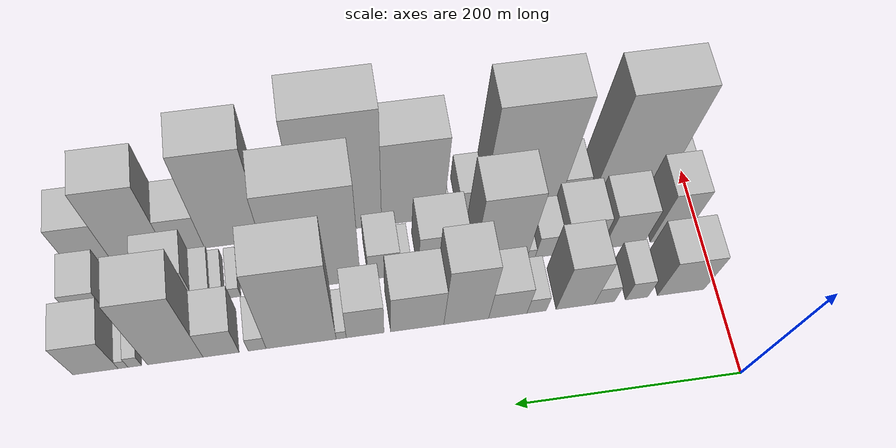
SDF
<sdf version="1.6">
 <world name="default">
  <model name="building_19">
   <static>1</static>
   <pose>100.0000 32.2616 0 0.000000 0.000000 0.000000</pose>
   <link name="link">
    <pose>0 0 37.50 0 0 0</pose>
    <collision name="collision"><geometry><box><size>40.0000 43.1738 75.0000</size></box></geometry></collision>
    <visual name="visual">
     <cast_shadows>0</cast_shadows>
     <geometry><box><size>40.0000 43.1738 75.0000</size></box></geometry>
     <material>
      <script>
       <uri>model://HANNAS_wall/materials/scripts</uri>
       <uri>model://HANNAS_wall/materials/textures</uri>
       <name>vrc/HANNAS_wall</name>
      </script>
     </material>
    </visual>
   </link>
  </model>
  <model name="building_20">
   <static>1</static>
   <pose>100.0000 73.1810 0 0.000000 0.000000 0.000000</pose>
   <link name="link">
    <pose>0 0 19.50 0 0 0</pose>
    <collision name="collision"><geometry><box><size>40.0000 20.6649 39.0000</size></box></geometry></collision>
    <visual name="visual">
     <cast_shadows>0</cast_shadows>
     <geometry><box><size>40.0000 20.6649 39.0000</size></box></geometry>
     <material>
      <script>
       <uri>model://HANNAS_wall/materials/scripts</uri>
       <uri>model://HANNAS_wall/materials/textures</uri>
       <name>vrc/HANNAS_wall</name>
      </script>
     </material>
    </visual>
   </link>
  </model>
  <model name="building_21">
   <static>1</static>
   <pose>100.0000 102.8595 0 0.000000 0.000000 0.000000</pose>
   <link name="link">
    <pose>0 0 18.00 0 0 0</pose>
    <collision name="collision"><geometry><box><size>40.0000 18.6922 36.0000</size></box></geometry></collision>
    <visual name="visual">
     <cast_shadows>0</cast_shadows>
     <geometry><box><size>40.0000 18.6922 36.0000</size></box></geometry>
     <material>
      <script>
       <uri>model://HANNAS_wall/materials/scripts</uri>
       <uri>model://HANNAS_wall/materials/textures</uri>
       <name>vrc/HANNAS_wall</name>
      </script>
     </material>
    </visual>
   </link>
  </model>
  <model name="building_22">
   <static>1</static>
   <pose>100.0000 129.7020 0 0.000000 0.000000 0.000000</pose>
   <link name="link">
    <pose>0 0 48.00 0 0 0</pose>
    <collision name="collision"><geometry><box><size>40.0000 34.9927 96.0000</size></box></geometry></collision>
    <visual name="visual">
     <cast_shadows>0</cast_shadows>
     <geometry><box><size>40.0000 34.9927 96.0000</size></box></geometry>
     <material>
      <script>
       <uri>model://HANNAS_wall/materials/scripts</uri>
       <uri>model://HANNAS_wall/materials/textures</uri>
       <name>vrc/HANNAS_wall</name>
      </script>
     </material>
    </visual>
   </link>
  </model>
  <model name="building_23">
   <static>1</static>
   <pose>100.0000 164.9879 0 0.000000 0.000000 0.000000</pose>
   <link name="link">
    <pose>0 0 16.50 0 0 0</pose>
    <collision name="collision"><geometry><box><size>40.0000 17.5790 33.0000</size></box></geometry></collision>
    <visual name="visual">
     <cast_shadows>0</cast_shadows>
     <geometry><box><size>40.0000 17.5790 33.0000</size></box></geometry>
     <material>
      <script>
       <uri>model://HANNAS_wall/materials/scripts</uri>
       <uri>model://HANNAS_wall/materials/textures</uri>
       <name>vrc/HANNAS_wall</name>
      </script>
     </material>
    </visual>
   </link>
  </model>
  <model name="building_24">
   <static>1</static>
   <pose>100.0000 191.1892 0 0.000000 0.000000 0.000000</pose>
   <link name="link">
    <pose>0 0 30.00 0 0 0</pose>
    <collision name="collision"><geometry><box><size>40.0000 34.8237 60.0000</size></box></geometry></collision>
    <visual name="visual">
     <cast_shadows>0</cast_shadows>
     <geometry><box><size>40.0000 34.8237 60.0000</size></box></geometry>
     <material>
      <script>
       <uri>model://HANNAS_wall/materials/scripts</uri>
       <uri>model://HANNAS_wall/materials/textures</uri>
       <name>vrc/HANNAS_wall</name>
      </script>
     </material>
    </visual>
   </link>
  </model>
  <model name="building_25">
   <static>1</static>
   <pose>100.0000 228.8745 0 0.000000 0.000000 0.000000</pose>
   <link name="link">
    <pose>0 0 61.50 0 0 0</pose>
    <collision name="collision"><geometry><box><size>40.0000 40.5469 123.0000</size></box></geometry></collision>
    <visual name="visual">
     <cast_shadows>0</cast_shadows>
     <geometry><box><size>40.0000 40.5469 123.0000</size></box></geometry>
     <material>
      <script>
       <uri>model://HANNAS_wall/materials/scripts</uri>
       <uri>model://HANNAS_wall/materials/textures</uri>
       <name>vrc/HANNAS_wall</name>
      </script>
     </material>
    </visual>
   </link>
  </model>
  <model name="building_26">
   <static>1</static>
   <pose>100.0000 273.0367 0 0.000000 0.000000 0.000000</pose>
   <link name="link">
    <pose>0 0 40.50 0 0 0</pose>
    <collision name="collision"><geometry><box><size>40.0000 47.7774 81.0000</size></box></geometry></collision>
    <visual name="visual">
     <cast_shadows>0</cast_shadows>
     <geometry><box><size>40.0000 47.7774 81.0000</size></box></geometry>
     <material>
      <script>
       <uri>model://HANNAS_wall/materials/scripts</uri>
       <uri>model://HANNAS_wall/materials/textures</uri>
       <name>vrc/HANNAS_wall</name>
      </script>
     </material>
    </visual>
   </link>
  </model>
  <model name="building_27">
   <static>1</static>
   <pose>100.0000 319.7425 0 0.000000 0.000000 0.000000</pose>
   <link name="link">
    <pose>0 0 33.00 0 0 0</pose>
    <collision name="collision"><geometry><box><size>40.0000 33.6341 66.0000</size></box></geometry></collision>
    <visual name="visual">
     <cast_shadows>0</cast_shadows>
     <geometry><box><size>40.0000 33.6341 66.0000</size></box></geometry>
     <material>
      <script>
       <uri>model://HANNAS_wall/materials/scripts</uri>
       <uri>model://HANNAS_wall/materials/textures</uri>
       <name>vrc/HANNAS_wall</name>
      </script>
     </material>
    </visual>
   </link>
  </model>
  <model name="building_28">
   <static>1</static>
   <pose>100.0000 341.0552 0 0.000000 0.000000 0.000000</pose>
   <link name="link">
    <pose>0 0 9.00 0 0 0</pose>
    <collision name="collision"><geometry><box><size>40.0000 8.9914 18.0000</size></box></geometry></collision>
    <visual name="visual">
     <cast_shadows>0</cast_shadows>
     <geometry><box><size>40.0000 8.9914 18.0000</size></box></geometry>
     <material>
      <script>
       <uri>model://HANNAS_wall/materials/scripts</uri>
       <uri>model://HANNAS_wall/materials/textures</uri>
       <name>vrc/HANNAS_wall</name>
      </script>
     </material>
    </visual>
   </link>
  </model>
  <model name="building_29">
   <static>1</static>
   <pose>100.0000 376.5766 0 0.000000 0.000000 0.000000</pose>
   <link name="link">
    <pose>0 0 87.00 0 0 0</pose>
    <collision name="collision"><geometry><box><size>40.0000 62.0514 174.0000</size></box></geometry></collision>
    <visual name="visual">
     <cast_shadows>0</cast_shadows>
     <geometry><box><size>40.0000 62.0514 174.0000</size></box></geometry>
     <material>
      <script>
       <uri>model://HANNAS_wall/materials/scripts</uri>
       <uri>model://HANNAS_wall/materials/textures</uri>
       <name>vrc/HANNAS_wall</name>
      </script>
     </material>
    </visual>
   </link>
  </model>
  <model name="building_30">
   <static>1</static>
   <pose>100.0000 415.5461 0 0.000000 0.000000 0.000000</pose>
   <link name="link">
    <pose>0 0 15.00 0 0 0</pose>
    <collision name="collision"><geometry><box><size>40.0000 15.8877 30.0000</size></box></geometry></collision>
    <visual name="visual">
     <cast_shadows>0</cast_shadows>
     <geometry><box><size>40.0000 15.8877 30.0000</size></box></geometry>
     <material>
      <script>
       <uri>model://HANNAS_wall/materials/scripts</uri>
       <uri>model://HANNAS_wall/materials/textures</uri>
       <name>vrc/HANNAS_wall</name>
      </script>
     </material>
    </visual>
   </link>
  </model>
  <model name="building_31">
   <static>1</static>
   <pose>100.0000 447.3565 0 0.000000 0.000000 0.000000</pose>
   <link name="link">
    <pose>0 0 30.00 0 0 0</pose>
    <collision name="collision"><geometry><box><size>40.0000 31.7331 60.0000</size></box></geometry></collision>
    <visual name="visual">
     <cast_shadows>0</cast_shadows>
     <geometry><box><size>40.0000 31.7331 60.0000</size></box></geometry>
     <material>
      <script>
       <uri>model://HANNAS_wall/materials/scripts</uri>
       <uri>model://HANNAS_wall/materials/textures</uri>
       <name>vrc/HANNAS_wall</name>
      </script>
     </material>
    </visual>
   </link>
  </model>
  <model name="building_32">
   <static>1</static>
   <pose>100.0000 487.4718 0 0.000000 0.000000 0.000000</pose>
   <link name="link">
    <pose>0 0 75.00 0 0 0</pose>
    <collision name="collision"><geometry><box><size>40.0000 48.4975 150.0000</size></box></geometry></collision>
    <visual name="visual">
     <cast_shadows>0</cast_shadows>
     <geometry><box><size>40.0000 48.4975 150.0000</size></box></geometry>
     <material>
      <script>
       <uri>model://HANNAS_wall/materials/scripts</uri>
       <uri>model://HANNAS_wall/materials/textures</uri>
       <name>vrc/HANNAS_wall</name>
      </script>
     </material>
    </visual>
   </link>
  </model>
  <model name="building_33">
   <static>1</static>
   <pose>100.0000 522.6468 0 0.000000 0.000000 0.000000</pose>
   <link name="link">
    <pose>0 0 12.00 0 0 0</pose>
    <collision name="collision"><geometry><box><size>40.0000 11.8524 24.0000</size></box></geometry></collision>
    <visual name="visual">
     <cast_shadows>0</cast_shadows>
     <geometry><box><size>40.0000 11.8524 24.0000</size></box></geometry>
     <material>
      <script>
       <uri>model://HANNAS_wall/materials/scripts</uri>
       <uri>model://HANNAS_wall/materials/textures</uri>
       <name>vrc/HANNAS_wall</name>
      </script>
     </material>
    </visual>
   </link>
  </model>
  <model name="building_34">
   <static>1</static>
   <pose>100.0000 532.8101 0 0.000000 0.000000 0.000000</pose>
   <link name="link">
    <pose>0 0 9.00 0 0 0</pose>
    <collision name="collision"><geometry><box><size>40.0000 8.4741 18.0000</size></box></geometry></collision>
    <visual name="visual">
     <cast_shadows>0</cast_shadows>
     <geometry><box><size>40.0000 8.4741 18.0000</size></box></geometry>
     <material>
      <script>
       <uri>model://HANNAS_wall/materials/scripts</uri>
       <uri>model://HANNAS_wall/materials/textures</uri>
       <name>vrc/HANNAS_wall</name>
      </script>
     </material>
    </visual>
   </link>
  </model>
  <model name="building_35">
   <static>1</static>
   <pose>100.0000 556.6974 0 0.000000 0.000000 0.000000</pose>
   <link name="link">
    <pose>0 0 36.00 0 0 0</pose>
    <collision name="collision"><geometry><box><size>40.0000 39.3006 72.0000</size></box></geometry></collision>
    <visual name="visual">
     <cast_shadows>0</cast_shadows>
     <geometry><box><size>40.0000 39.3006 72.0000</size></box></geometry>
     <material>
      <script>
       <uri>model://HANNAS_wall/materials/scripts</uri>
       <uri>model://HANNAS_wall/materials/textures</uri>
       <name>vrc/HANNAS_wall</name>
      </script>
     </material>
    </visual>
   </link>
  </model>
  <model name="building_52">
   <static>1</static>
   <pose>152.0000 31.6889 0 0.000000 0.000000 0.000000</pose>
   <link name="link">
    <pose>0 0 48.00 0 0 0</pose>
    <collision name="collision"><geometry><box><size>40.0000 31.4053 96.0000</size></box></geometry></collision>
    <visual name="visual">
     <cast_shadows>0</cast_shadows>
     <geometry><box><size>40.0000 31.4053 96.0000</size></box></geometry>
     <material>
      <script>
       <uri>model://HANNAS_wall/materials/scripts</uri>
       <uri>model://HANNAS_wall/materials/textures</uri>
       <name>vrc/HANNAS_wall</name>
      </script>
     </material>
    </visual>
   </link>
  </model>
  <model name="building_53">
   <static>1</static>
   <pose>152.0000 72.4123 0 0.000000 0.000000 0.000000</pose>
   <link name="link">
    <pose>0 0 34.50 0 0 0</pose>
    <collision name="collision"><geometry><box><size>40.0000 38.0416 69.0000</size></box></geometry></collision>
    <visual name="visual">
     <cast_shadows>0</cast_shadows>
     <geometry><box><size>40.0000 38.0416 69.0000</size></box></geometry>
     <material>
      <script>
       <uri>model://HANNAS_wall/materials/scripts</uri>
       <uri>model://HANNAS_wall/materials/textures</uri>
       <name>vrc/HANNAS_wall</name>
      </script>
     </material>
    </visual>
   </link>
  </model>
  <model name="building_54">
   <static>1</static>
   <pose>152.0000 114.3250 0 0.000000 0.000000 0.000000</pose>
   <link name="link">
    <pose>0 0 33.00 0 0 0</pose>
    <collision name="collision"><geometry><box><size>40.0000 37.7837 66.0000</size></box></geometry></collision>
    <visual name="visual">
     <cast_shadows>0</cast_shadows>
     <geometry><box><size>40.0000 37.7837 66.0000</size></box></geometry>
     <material>
      <script>
       <uri>model://HANNAS_wall/materials/scripts</uri>
       <uri>model://HANNAS_wall/materials/textures</uri>
       <name>vrc/HANNAS_wall</name>
      </script>
     </material>
    </visual>
   </link>
  </model>
  <model name="building_55">
   <static>1</static>
   <pose>152.0000 144.5423 0 0.000000 0.000000 0.000000</pose>
   <link name="link">
    <pose>0 0 21.00 0 0 0</pose>
    <collision name="collision"><geometry><box><size>40.0000 22.6509 42.0000</size></box></geometry></collision>
    <visual name="visual">
     <cast_shadows>0</cast_shadows>
     <geometry><box><size>40.0000 22.6509 42.0000</size></box></geometry>
     <material>
      <script>
       <uri>model://HANNAS_wall/materials/scripts</uri>
       <uri>model://HANNAS_wall/materials/textures</uri>
       <name>vrc/HANNAS_wall</name>
      </script>
     </material>
    </visual>
   </link>
  </model>
  <model name="building_56">
   <static>1</static>
   <pose>152.0000 159.6334 0 0.000000 0.000000 0.000000</pose>
   <link name="link">
    <pose>0 0 9.00 0 0 0</pose>
    <collision name="collision"><geometry><box><size>40.0000 7.5313 18.0000</size></box></geometry></collision>
    <visual name="visual">
     <cast_shadows>0</cast_shadows>
     <geometry><box><size>40.0000 7.5313 18.0000</size></box></geometry>
     <material>
      <script>
       <uri>model://HANNAS_wall/materials/scripts</uri>
       <uri>model://HANNAS_wall/materials/textures</uri>
       <name>vrc/HANNAS_wall</name>
      </script>
     </material>
    </visual>
   </link>
  </model>
  <model name="building_57">
   <static>1</static>
   <pose>152.0000 188.3692 0 0.000000 0.000000 0.000000</pose>
   <link name="link">
    <pose>0 0 67.50 0 0 0</pose>
    <collision name="collision"><geometry><box><size>40.0000 49.9403 135.0000</size></box></geometry></collision>
    <visual name="visual">
     <cast_shadows>0</cast_shadows>
     <geometry><box><size>40.0000 49.9403 135.0000</size></box></geometry>
     <material>
      <script>
       <uri>model://HANNAS_wall/materials/scripts</uri>
       <uri>model://HANNAS_wall/materials/textures</uri>
       <name>vrc/HANNAS_wall</name>
      </script>
     </material>
    </visual>
   </link>
  </model>
  <model name="building_58">
   <static>1</static>
   <pose>152.0000 242.3548 0 0.000000 0.000000 0.000000</pose>
   <link name="link">
    <pose>0 0 37.50 0 0 0</pose>
    <collision name="collision"><geometry><box><size>40.0000 44.0309 75.0000</size></box></geometry></collision>
    <visual name="visual">
     <cast_shadows>0</cast_shadows>
     <geometry><box><size>40.0000 44.0309 75.0000</size></box></geometry>
     <material>
      <script>
       <uri>model://HANNAS_wall/materials/scripts</uri>
       <uri>model://HANNAS_wall/materials/textures</uri>
       <name>vrc/HANNAS_wall</name>
      </script>
     </material>
    </visual>
   </link>
  </model>
  <model name="building_59">
   <static>1</static>
   <pose>152.0000 275.8309 0 0.000000 0.000000 0.000000</pose>
   <link name="link">
    <pose>0 0 12.00 0 0 0</pose>
    <collision name="collision"><geometry><box><size>40.0000 10.9214 24.0000</size></box></geometry></collision>
    <visual name="visual">
     <cast_shadows>0</cast_shadows>
     <geometry><box><size>40.0000 10.9214 24.0000</size></box></geometry>
     <material>
      <script>
       <uri>model://HANNAS_wall/materials/scripts</uri>
       <uri>model://HANNAS_wall/materials/textures</uri>
       <name>vrc/HANNAS_wall</name>
      </script>
     </material>
    </visual>
   </link>
  </model>
  <model name="building_60">
   <static>1</static>
   <pose>152.0000 295.7614 0 0.000000 0.000000 0.000000</pose>
   <link name="link">
    <pose>0 0 27.00 0 0 0</pose>
    <collision name="collision"><geometry><box><size>40.0000 28.9395 54.0000</size></box></geometry></collision>
    <visual name="visual">
     <cast_shadows>0</cast_shadows>
     <geometry><box><size>40.0000 28.9395 54.0000</size></box></geometry>
     <material>
      <script>
       <uri>model://HANNAS_wall/materials/scripts</uri>
       <uri>model://HANNAS_wall/materials/textures</uri>
       <name>vrc/HANNAS_wall</name>
      </script>
     </material>
    </visual>
   </link>
  </model>
  <model name="building_61">
   <static>1</static>
   <pose>152.0000 355.4375 0 0.000000 0.000000 0.000000</pose>
   <link name="link">
    <pose>0 0 96.00 0 0 0</pose>
    <collision name="collision"><geometry><box><size>40.0000 76.4127 192.0000</size></box></geometry></collision>
    <visual name="visual">
     <cast_shadows>0</cast_shadows>
     <geometry><box><size>40.0000 76.4127 192.0000</size></box></geometry>
     <material>
      <script>
       <uri>model://HANNAS_wall/materials/scripts</uri>
       <uri>model://HANNAS_wall/materials/textures</uri>
       <name>vrc/HANNAS_wall</name>
      </script>
     </material>
    </visual>
   </link>
  </model>
  <model name="building_62">
   <static>1</static>
   <pose>152.0000 406.7517 0 0.000000 0.000000 0.000000</pose>
   <link name="link">
    <pose>0 0 22.50 0 0 0</pose>
    <collision name="collision"><geometry><box><size>40.0000 26.2156 45.0000</size></box></geometry></collision>
    <visual name="visual">
     <cast_shadows>0</cast_shadows>
     <geometry><box><size>40.0000 26.2156 45.0000</size></box></geometry>
     <material>
      <script>
       <uri>model://HANNAS_wall/materials/scripts</uri>
       <uri>model://HANNAS_wall/materials/textures</uri>
       <name>vrc/HANNAS_wall</name>
      </script>
     </material>
    </visual>
   </link>
  </model>
  <model name="building_63">
   <static>1</static>
   <pose>152.0000 431.0252 0 0.000000 0.000000 0.000000</pose>
   <link name="link">
    <pose>0 0 10.50 0 0 0</pose>
    <collision name="collision"><geometry><box><size>40.0000 10.3315 21.0000</size></box></geometry></collision>
    <visual name="visual">
     <cast_shadows>0</cast_shadows>
     <geometry><box><size>40.0000 10.3315 21.0000</size></box></geometry>
     <material>
      <script>
       <uri>model://HANNAS_wall/materials/scripts</uri>
       <uri>model://HANNAS_wall/materials/textures</uri>
       <name>vrc/HANNAS_wall</name>
      </script>
     </material>
    </visual>
   </link>
  </model>
  <model name="building_64">
   <static>1</static>
   <pose>152.0000 445.3831 0 0.000000 0.000000 0.000000</pose>
   <link name="link">
    <pose>0 0 10.50 0 0 0</pose>
    <collision name="collision"><geometry><box><size>40.0000 10.3843 21.0000</size></box></geometry></collision>
    <visual name="visual">
     <cast_shadows>0</cast_shadows>
     <geometry><box><size>40.0000 10.3843 21.0000</size></box></geometry>
     <material>
      <script>
       <uri>model://HANNAS_wall/materials/scripts</uri>
       <uri>model://HANNAS_wall/materials/textures</uri>
       <name>vrc/HANNAS_wall</name>
      </script>
     </material>
    </visual>
   </link>
  </model>
  <model name="building_65">
   <static>1</static>
   <pose>152.0000 458.6024 0 0.000000 0.000000 0.000000</pose>
   <link name="link">
    <pose>0 0 15.00 0 0 0</pose>
    <collision name="collision"><geometry><box><size>40.0000 16.0543 30.0000</size></box></geometry></collision>
    <visual name="visual">
     <cast_shadows>0</cast_shadows>
     <geometry><box><size>40.0000 16.0543 30.0000</size></box></geometry>
     <material>
      <script>
       <uri>model://HANNAS_wall/materials/scripts</uri>
       <uri>model://HANNAS_wall/materials/textures</uri>
       <name>vrc/HANNAS_wall</name>
      </script>
     </material>
    </visual>
   </link>
  </model>
  <model name="building_66">
   <static>1</static>
   <pose>152.0000 487.6283 0 0.000000 0.000000 0.000000</pose>
   <link name="link">
    <pose>0 0 36.00 0 0 0</pose>
    <collision name="collision"><geometry><box><size>40.0000 41.9977 72.0000</size></box></geometry></collision>
    <visual name="visual">
     <cast_shadows>0</cast_shadows>
     <geometry><box><size>40.0000 41.9977 72.0000</size></box></geometry>
     <material>
      <script>
       <uri>model://HANNAS_wall/materials/scripts</uri>
       <uri>model://HANNAS_wall/materials/textures</uri>
       <name>vrc/HANNAS_wall</name>
      </script>
     </material>
    </visual>
   </link>
  </model>
  <model name="building_67">
   <static>1</static>
   <pose>152.0000 517.8800 0 0.000000 0.000000 0.000000</pose>
   <link name="link">
    <pose>0 0 16.50 0 0 0</pose>
    <collision name="collision"><geometry><box><size>40.0000 18.5056 33.0000</size></box></geometry></collision>
    <visual name="visual">
     <cast_shadows>0</cast_shadows>
     <geometry><box><size>40.0000 18.5056 33.0000</size></box></geometry>
     <material>
      <script>
       <uri>model://HANNAS_wall/materials/scripts</uri>
       <uri>model://HANNAS_wall/materials/textures</uri>
       <name>vrc/HANNAS_wall</name>
      </script>
     </material>
    </visual>
   </link>
  </model>
  <model name="building_68">
   <static>1</static>
   <pose>152.0000 540.4838 0 0.000000 0.000000 0.000000</pose>
   <link name="link">
    <pose>0 0 9.00 0 0 0</pose>
    <collision name="collision"><geometry><box><size>40.0000 8.7020 18.0000</size></box></geometry></collision>
    <visual name="visual">
     <cast_shadows>0</cast_shadows>
     <geometry><box><size>40.0000 8.7020 18.0000</size></box></geometry>
     <material>
      <script>
       <uri>model://HANNAS_wall/materials/scripts</uri>
       <uri>model://HANNAS_wall/materials/textures</uri>
       <name>vrc/HANNAS_wall</name>
      </script>
     </material>
    </visual>
   </link>
  </model>
  <model name="building_69">
   <static>1</static>
   <pose>152.0000 560.0318 0 0.000000 0.000000 0.000000</pose>
   <link name="link">
    <pose>0 0 27.00 0 0 0</pose>
    <collision name="collision"><geometry><box><size>40.0000 30.3942 54.0000</size></box></geometry></collision>
    <visual name="visual">
     <cast_shadows>0</cast_shadows>
     <geometry><box><size>40.0000 30.3942 54.0000</size></box></geometry>
     <material>
      <script>
       <uri>model://HANNAS_wall/materials/scripts</uri>
       <uri>model://HANNAS_wall/materials/textures</uri>
       <name>vrc/HANNAS_wall</name>
      </script>
     </material>
    </visual>
   </link>
  </model>
  <model name="building_83">
   <static>1</static>
   <pose>204.0000 10.4153 0 0.000000 0.000000 0.000000</pose>
   <link name="link">
    <pose>0 0 22.50 0 0 0</pose>
    <collision name="collision"><geometry><box><size>40.0000 23.0629 45.0000</size></box></geometry></collision>
    <visual name="visual">
     <cast_shadows>0</cast_shadows>
     <geometry><box><size>40.0000 23.0629 45.0000</size></box></geometry>
     <material>
      <script>
       <uri>model://HANNAS_wall/materials/scripts</uri>
       <uri>model://HANNAS_wall/materials/textures</uri>
       <name>vrc/HANNAS_wall</name>
      </script>
     </material>
    </visual>
   </link>
  </model>
  <model name="building_84">
   <static>1</static>
   <pose>204.0000 56.2340 0 0.000000 0.000000 0.000000</pose>
   <link name="link">
    <pose>0 0 90.00 0 0 0</pose>
    <collision name="collision"><geometry><box><size>40.0000 68.5745 180.0000</size></box></geometry></collision>
    <visual name="visual">
     <cast_shadows>0</cast_shadows>
     <geometry><box><size>40.0000 68.5745 180.0000</size></box></geometry>
     <material>
      <script>
       <uri>model://HANNAS_wall/materials/scripts</uri>
       <uri>model://HANNAS_wall/materials/textures</uri>
       <name>vrc/HANNAS_wall</name>
      </script>
     </material>
    </visual>
   </link>
  </model>
  <model name="building_85">
   <static>1</static>
   <pose>204.0000 109.8151 0 0.000000 0.000000 0.000000</pose>
   <link name="link">
    <pose>0 0 22.50 0 0 0</pose>
    <collision name="collision"><geometry><box><size>40.0000 24.5877 45.0000</size></box></geometry></collision>
    <visual name="visual">
     <cast_shadows>0</cast_shadows>
     <geometry><box><size>40.0000 24.5877 45.0000</size></box></geometry>
     <material>
      <script>
       <uri>model://HANNAS_wall/materials/scripts</uri>
       <uri>model://HANNAS_wall/materials/textures</uri>
       <name>vrc/HANNAS_wall</name>
      </script>
     </material>
    </visual>
   </link>
  </model>
  <model name="building_86">
   <static>1</static>
   <pose>204.0000 159.2760 0 0.000000 0.000000 0.000000</pose>
   <link name="link">
    <pose>0 0 93.00 0 0 0</pose>
    <collision name="collision"><geometry><box><size>40.0000 74.3343 186.0000</size></box></geometry></collision>
    <visual name="visual">
     <cast_shadows>0</cast_shadows>
     <geometry><box><size>40.0000 74.3343 186.0000</size></box></geometry>
     <material>
      <script>
       <uri>model://HANNAS_wall/materials/scripts</uri>
       <uri>model://HANNAS_wall/materials/textures</uri>
       <name>vrc/HANNAS_wall</name>
      </script>
     </material>
    </visual>
   </link>
  </model>
  <model name="building_87">
   <static>1</static>
   <pose>204.0000 207.7874 0 0.000000 0.000000 0.000000</pose>
   <link name="link">
    <pose>0 0 22.50 0 0 0</pose>
    <collision name="collision"><geometry><box><size>40.0000 22.6885 45.0000</size></box></geometry></collision>
    <visual name="visual">
     <cast_shadows>0</cast_shadows>
     <geometry><box><size>40.0000 22.6885 45.0000</size></box></geometry>
     <material>
      <script>
       <uri>model://HANNAS_wall/materials/scripts</uri>
       <uri>model://HANNAS_wall/materials/textures</uri>
       <name>vrc/HANNAS_wall</name>
      </script>
     </material>
    </visual>
   </link>
  </model>
  <model name="building_88">
   <static>1</static>
   <pose>204.0000 229.4666 0 0.000000 0.000000 0.000000</pose>
   <link name="link">
    <pose>0 0 7.50 0 0 0</pose>
    <collision name="collision"><geometry><box><size>40.0000 6.6697 15.0000</size></box></geometry></collision>
    <visual name="visual">
     <cast_shadows>0</cast_shadows>
     <geometry><box><size>40.0000 6.6697 15.0000</size></box></geometry>
     <material>
      <script>
       <uri>model://HANNAS_wall/materials/scripts</uri>
       <uri>model://HANNAS_wall/materials/textures</uri>
       <name>vrc/HANNAS_wall</name>
      </script>
     </material>
    </visual>
   </link>
  </model>
  <model name="building_89">
   <static>1</static>
   <pose>204.0000 261.8028 0 0.000000 0.000000 0.000000</pose>
   <link name="link">
    <pose>0 0 75.00 0 0 0</pose>
    <collision name="collision"><geometry><box><size>40.0000 58.0028 150.0000</size></box></geometry></collision>
    <visual name="visual">
     <cast_shadows>0</cast_shadows>
     <geometry><box><size>40.0000 58.0028 150.0000</size></box></geometry>
     <material>
      <script>
       <uri>model://HANNAS_wall/materials/scripts</uri>
       <uri>model://HANNAS_wall/materials/textures</uri>
       <name>vrc/HANNAS_wall</name>
      </script>
     </material>
    </visual>
   </link>
  </model>
  <model name="building_90">
   <static>1</static>
   <pose>204.0000 328.3481 0 0.000000 0.000000 0.000000</pose>
   <link name="link">
    <pose>0 0 103.50 0 0 0</pose>
    <collision name="collision"><geometry><box><size>40.0000 75.0877 207.0000</size></box></geometry></collision>
    <visual name="visual">
     <cast_shadows>0</cast_shadows>
     <geometry><box><size>40.0000 75.0877 207.0000</size></box></geometry>
     <material>
      <script>
       <uri>model://HANNAS_wall/materials/scripts</uri>
       <uri>model://HANNAS_wall/materials/textures</uri>
       <name>vrc/HANNAS_wall</name>
      </script>
     </material>
    </visual>
   </link>
  </model>
  <model name="building_91">
   <static>1</static>
   <pose>204.0000 382.6269 0 0.000000 0.000000 0.000000</pose>
   <link name="link">
    <pose>0 0 30.00 0 0 0</pose>
    <collision name="collision"><geometry><box><size>40.0000 33.4699 60.0000</size></box></geometry></collision>
    <visual name="visual">
     <cast_shadows>0</cast_shadows>
     <geometry><box><size>40.0000 33.4699 60.0000</size></box></geometry>
     <material>
      <script>
       <uri>model://HANNAS_wall/materials/scripts</uri>
       <uri>model://HANNAS_wall/materials/textures</uri>
       <name>vrc/HANNAS_wall</name>
      </script>
     </material>
    </visual>
   </link>
  </model>
  <model name="building_92">
   <static>1</static>
   <pose>204.0000 427.4326 0 0.000000 0.000000 0.000000</pose>
   <link name="link">
    <pose>0 0 87.00 0 0 0</pose>
    <collision name="collision"><geometry><box><size>40.0000 56.1415 174.0000</size></box></geometry></collision>
    <visual name="visual">
     <cast_shadows>0</cast_shadows>
     <geometry><box><size>40.0000 56.1415 174.0000</size></box></geometry>
     <material>
      <script>
       <uri>model://HANNAS_wall/materials/scripts</uri>
       <uri>model://HANNAS_wall/materials/textures</uri>
       <name>vrc/HANNAS_wall</name>
      </script>
     </material>
    </visual>
   </link>
  </model>
  <model name="building_93">
   <static>1</static>
   <pose>204.0000 472.8224 0 0.000000 0.000000 0.000000</pose>
   <link name="link">
    <pose>0 0 33.00 0 0 0</pose>
    <collision name="collision"><geometry><box><size>40.0000 34.6381 66.0000</size></box></geometry></collision>
    <visual name="visual">
     <cast_shadows>0</cast_shadows>
     <geometry><box><size>40.0000 34.6381 66.0000</size></box></geometry>
     <material>
      <script>
       <uri>model://HANNAS_wall/materials/scripts</uri>
       <uri>model://HANNAS_wall/materials/textures</uri>
       <name>vrc/HANNAS_wall</name>
      </script>
     </material>
    </visual>
   </link>
  </model>
  <model name="building_94">
   <static>1</static>
   <pose>204.0000 515.5897 0 0.000000 0.000000 0.000000</pose>
   <link name="link">
    <pose>0 0 67.50 0 0 0</pose>
    <collision name="collision"><geometry><box><size>40.0000 50.8964 135.0000</size></box></geometry></collision>
    <visual name="visual">
     <cast_shadows>0</cast_shadows>
     <geometry><box><size>40.0000 50.8964 135.0000</size></box></geometry>
     <material>
      <script>
       <uri>model://HANNAS_wall/materials/scripts</uri>
       <uri>model://HANNAS_wall/materials/textures</uri>
       <name>vrc/HANNAS_wall</name>
      </script>
     </material>
    </visual>
   </link>
  </model>
  <model name="building_95">
   <static>1</static>
   <pose>204.0000 560.3618 0 0.000000 0.000000 0.000000</pose>
   <link name="link">
    <pose>0 0 37.50 0 0 0</pose>
    <collision name="collision"><geometry><box><size>40.0000 38.6479 75.0000</size></box></geometry></collision>
    <visual name="visual">
     <cast_shadows>0</cast_shadows>
     <geometry><box><size>40.0000 38.6479 75.0000</size></box></geometry>
     <material>
      <script>
       <uri>model://HANNAS_wall/materials/scripts</uri>
       <uri>model://HANNAS_wall/materials/textures</uri>
       <name>vrc/HANNAS_wall</name>
      </script>
     </material>
    </visual>
   </link>
  </model>
 </world>
</sdf>
